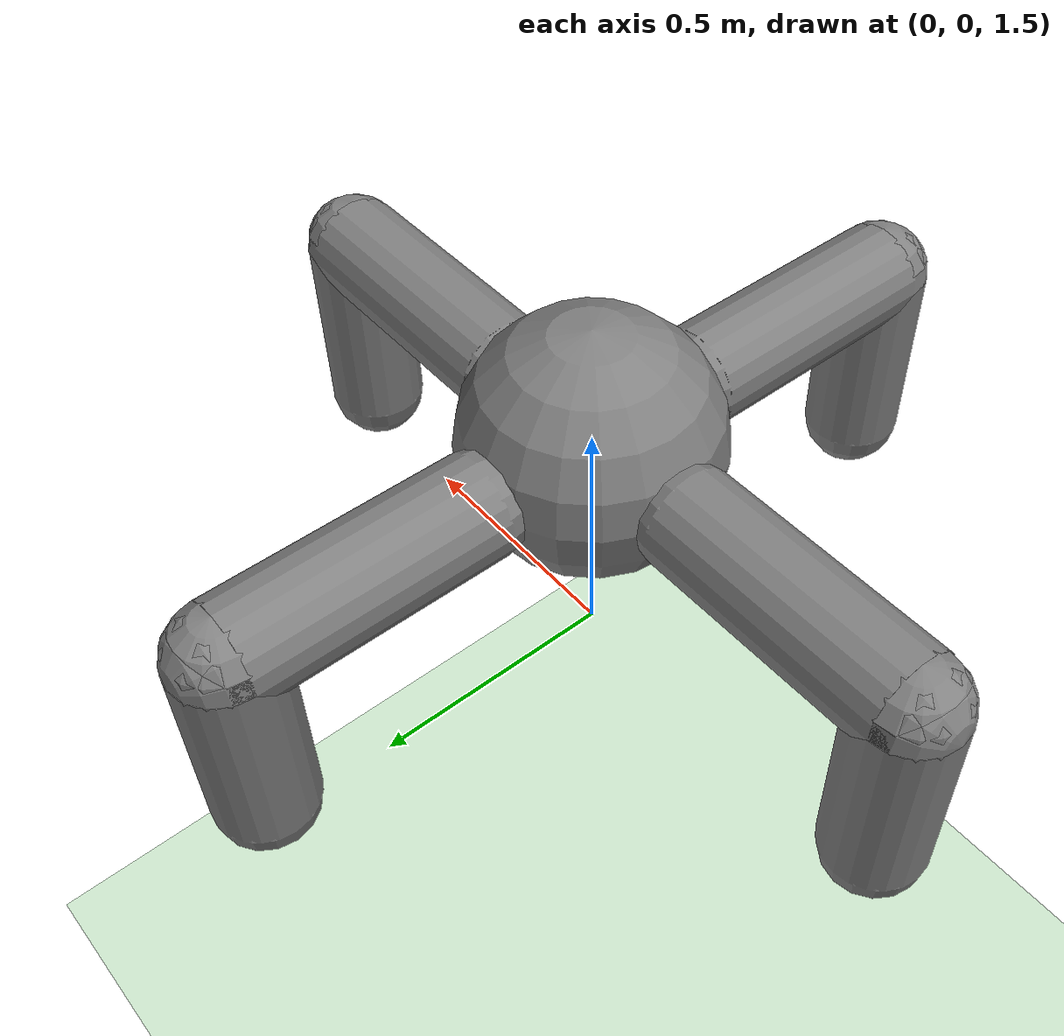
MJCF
<?xml version="1.0" encoding="utf-8"?>
<mujoco model="antrobot_dfs">
	<compiler/>
	<statistic center="0 0 1" extent="2"/>
	<option gravity="0 0 0" timestep="0.00555"/>
	<size nconmax="500" njmax="1000"/>
	<custom/>
	<default>
		<motor ctrllimited="true" ctrlrange="-1 1"/>
		<default class="body">
			<geom condim="1" friction="1.0 0.05 0.05" type="capsule" solimp="0.9 0.99 0.003" solref="0.015 1"/>
			<joint armature="0.007" damping="0.1" limited="true" stiffness="5" type="hinge" solimplimit="0 0.99 0.01"/>
			<site group="3" size="0.04"/>
			<default class="force-torque">
				<site rgba="1 0 0 1" size="0.01 0.01 0.02" type="box"/>
			</default>
			<default class="touch">
				<site rgba="0 0 1 0.3" type="capsule"/>
			</default>
		</default>
	</default>
	<asset>
		<texture builtin="gradient" height="100" rgb1="1 1 1" rgb2="0 0 0" type="skybox" width="100"/>
		<texture builtin="flat" height="1278" mark="cross" markrgb="1 1 1" name="texgeom" random="0.01" rgb1="0.8 0.6 0.4" rgb2="0.8 0.6 0.4" type="cube" width="127"/>
		<texture builtin="checker" height="100" name="texplane" rgb1="0 0 0" rgb2="0.8 0.8 0.8" type="2d" width="100"/>
		<material name="MatPlane" reflectance="0.5" shininess="1" specular="1" texrepeat="60 60" texture="texplane"/>
		<material name="geom" texture="texgeom" texuniform="true"/>
	</asset>
	<worldbody>
		<light cutoff="100" diffuse="1 1 1" dir="0 0 -1.3" directional="true" exponent="1" pos="0 0 1.3" specular="0.1 0.1 0.1"/>
		<geom conaffinity="1" condim="3" material="MatPlane" name="floor" pos="0 0 0" rgba="0.8 0.9 0.8 1" size="40 40 40" type="plane"/>
		<body name="SRL_root" pos="0 0 2" quat="1.0 0.0 0.0 0.0">
			<geom name="SRL_geom_root" pos="0 0 0" size="0.25" type="sphere"/>
			<body name="SRL_leg4" pos="0 -0.25 0" quat="-0.70711 0.0 0.0 0.70711">
				<geom fromto="0 0 0 0.5 0 0" name="SRL_geom_leg4" size="0.1" type="capsule"/>
				<body name="SRL_shin4" pos="0.5 0 0" quat="0.70711 0.0 0.70711 0.0">
					<geom fromto="0 0 0 0.4 0 0" name="SRL_geom_shin4" size="0.1" type="capsule"/>
					<joint axis="0 1 0" name="SRL_joint_joint4" pos="0 0 0" range="-45 45" type="hinge"/>
				</body>
			</body>
			<body name="SRL_leg3" pos="-0.25 0 0" quat="0.0 0.0 0.0 1.0">
				<geom fromto="0 0 0 0.5 0 0" name="SRL_geom_leg3" size="0.1" type="capsule"/>
				<body name="SRL_shin3" pos="0.5 0 0" quat="0.70711 0.0 0.70711 0.0">
					<geom fromto="0 0 0 0.4 0 0" name="SRL_geom_shin3" size="0.1" type="capsule"/>
					<joint axis="0 1 0" name="SRL_joint_joint3" pos="0 0 0" range="-45 45" type="hinge"/>
				</body>
			</body>
			<body name="SRL_leg2" pos="0 0.25 0" quat="0.70711 0.0 0.0 0.70711">
				<geom fromto="0 0 0 0.5 0 0" name="SRL_geom_leg2" size="0.1" type="capsule"/>
				<body name="SRL_shin2" pos="0.5 0 0" quat="0.70711 0.0 0.70711 0.0">
					<geom fromto="0 0 0 0.4 0 0" name="SRL_geom_shin2" size="0.1" type="capsule"/>
					<joint axis="0 1 0" name="SRL_joint_joint2" pos="0 0 0" range="-45 45" type="hinge"/>
				</body>
			</body>
			<body name="SRL_leg1" pos="0.25 0 0" quat="1.0 0.0 0.0 0.0">
				<geom fromto="0 0 0 0.5 0 0" name="SRL_geom_leg1" size="0.1" type="capsule"/>
				<joint axis="0 0 1" name="SRL_joint_joint01" pos="0 0 0" range="-45 45" type="hinge"/>
				<joint axis="0 1 0" name="SRL_joint_joint02" pos="0 0 0" range="-45 45" type="hinge"/>
				<body name="SRL_shin1" pos="0.5 0 0" quat="0.70711 0.0 0.70711 0.0">
					<geom fromto="0 0 0 0.4 0 0" name="SRL_geom_shin1" size="0.1" type="capsule"/>
					<joint axis="0 1 0" name="SRL_joint_joint1" pos="0 0 0" range="-45 45" type="hinge"/>
				</body>
			</body>
		</body>
	</worldbody>
	<actuator>
		<motor ctrllimited="true" ctrlrange="-1 1" joint="SRL_joint_joint4"/>
		<motor ctrllimited="true" ctrlrange="-1 1" joint="SRL_joint_joint3"/>
		<motor ctrllimited="true" ctrlrange="-1 1" joint="SRL_joint_joint2"/>
		<motor ctrllimited="true" ctrlrange="-1 1" joint="SRL_joint_joint01"/>
		<motor ctrllimited="true" ctrlrange="-1 1" joint="SRL_joint_joint02"/>
		<motor ctrllimited="true" ctrlrange="-1 1" joint="SRL_joint_joint1"/>
	</actuator>
</mujoco>
